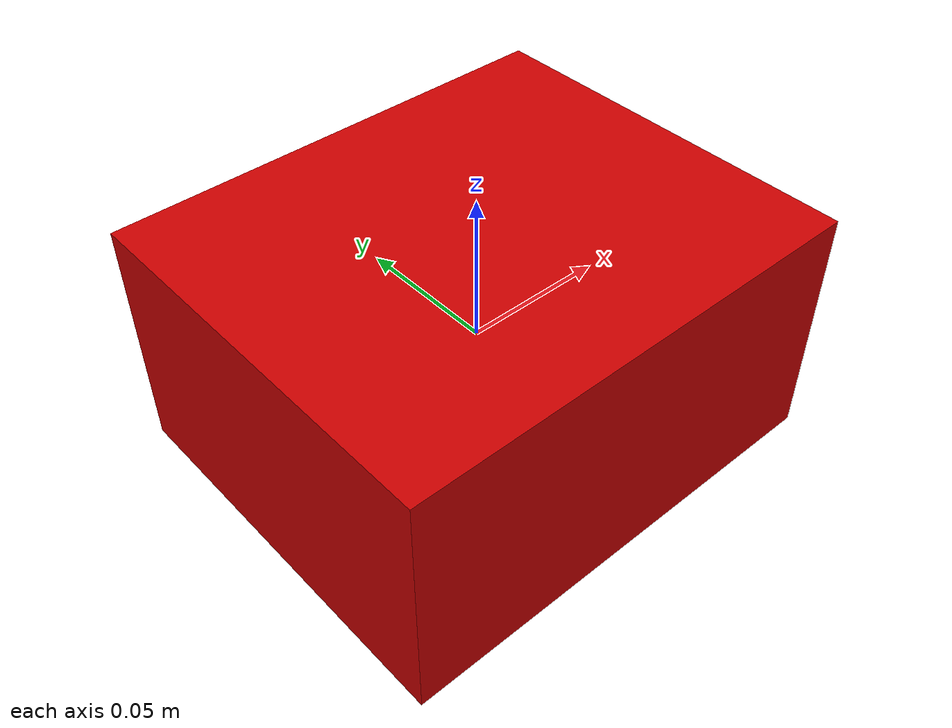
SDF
<?xml version="1.0" ?>
<sdf version="1.6">
  <model name="container_red">
    <static>false</static>
    <link name="link">
      <inertial>
        <mass>0.2</mass>
        <inertia>
          <ixx>0.0001</ixx>
          <ixy>0</ixy>
          <ixz>0</ixz>
          <iyy>0.0001</iyy>
          <iyz>0</iyz>
          <izz>0.0001</izz>
        </inertia>
      </inertial>
      <collision name="collision">
        <geometry>
          <box>
            <size>0.160 0.135 0.082</size> <!-- Rulebook dimensions -->
          </box>
        </geometry>
      </collision>
      <visual name="visual">
        <geometry>
          <box>
            <size>0.160 0.135 0.082</size>
          </box>
        </geometry>
        <material>
          <ambient>0.8 0 0 1</ambient> <!-- RAL 3020 approx -->
          <diffuse>0.8 0 0 1</diffuse>
        </material>
      </visual>
    </link>
  </model>
</sdf>
